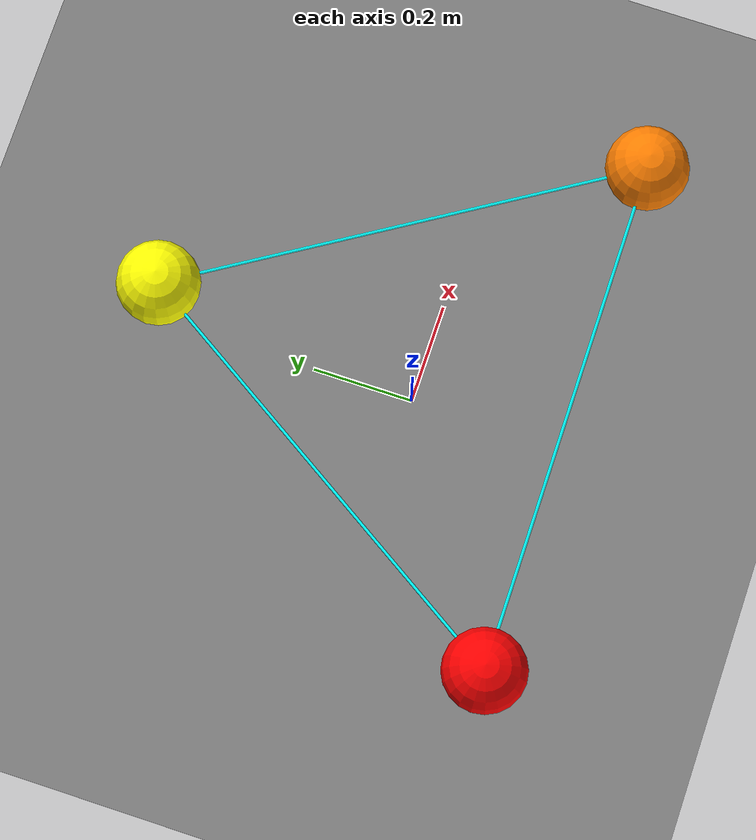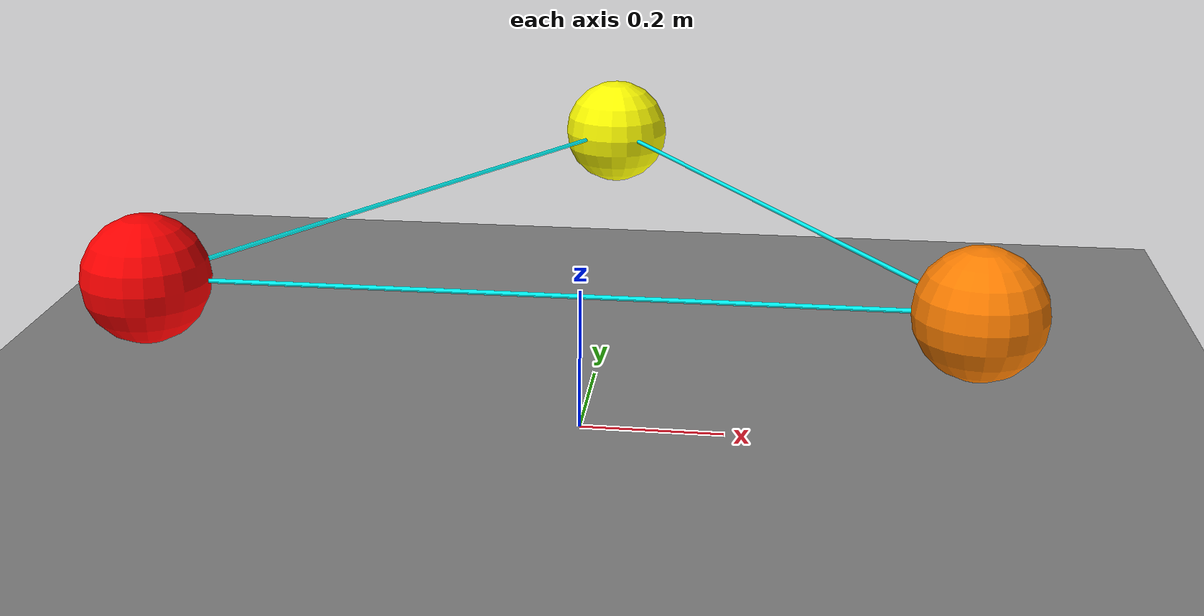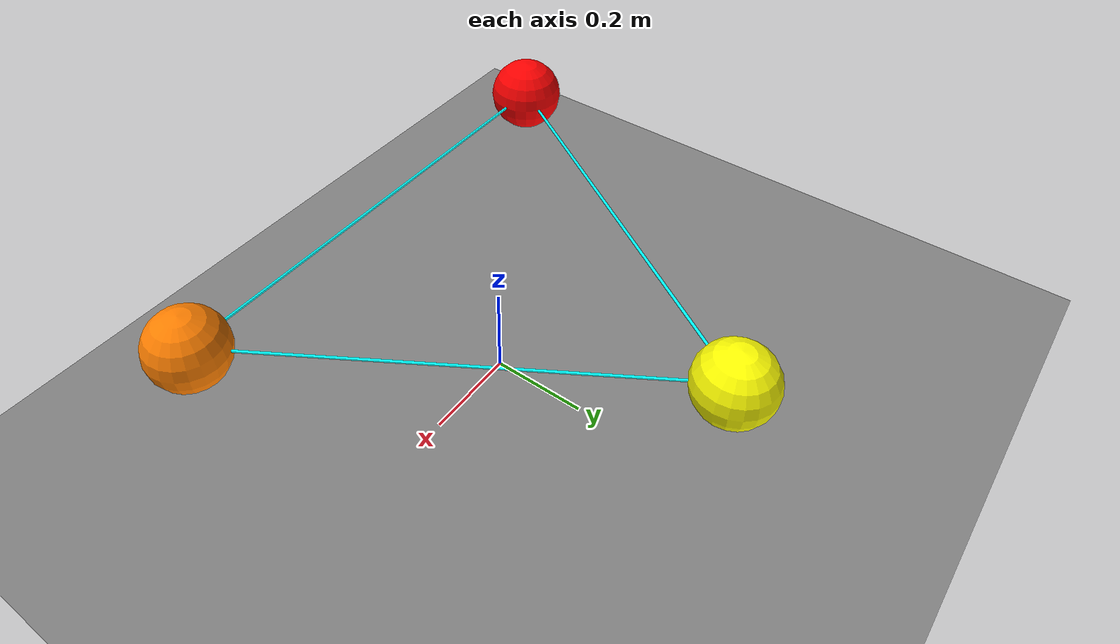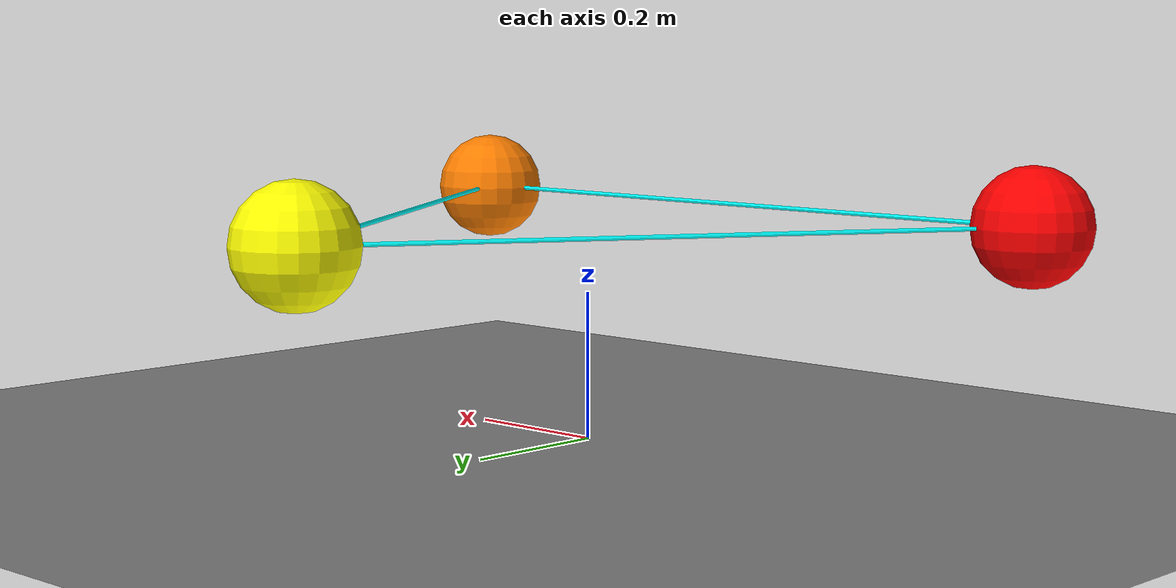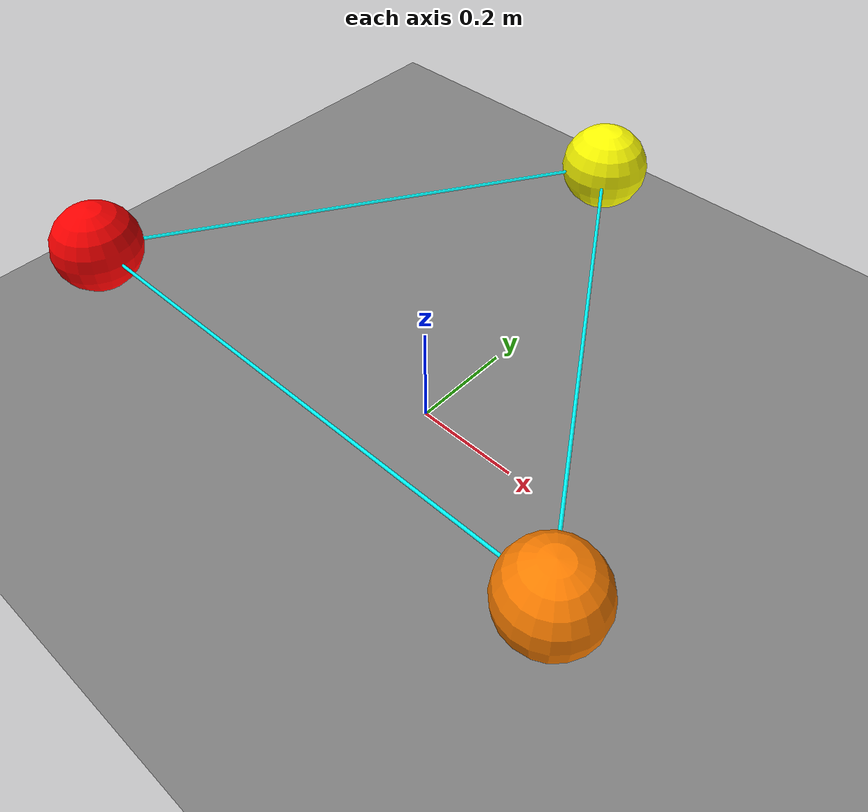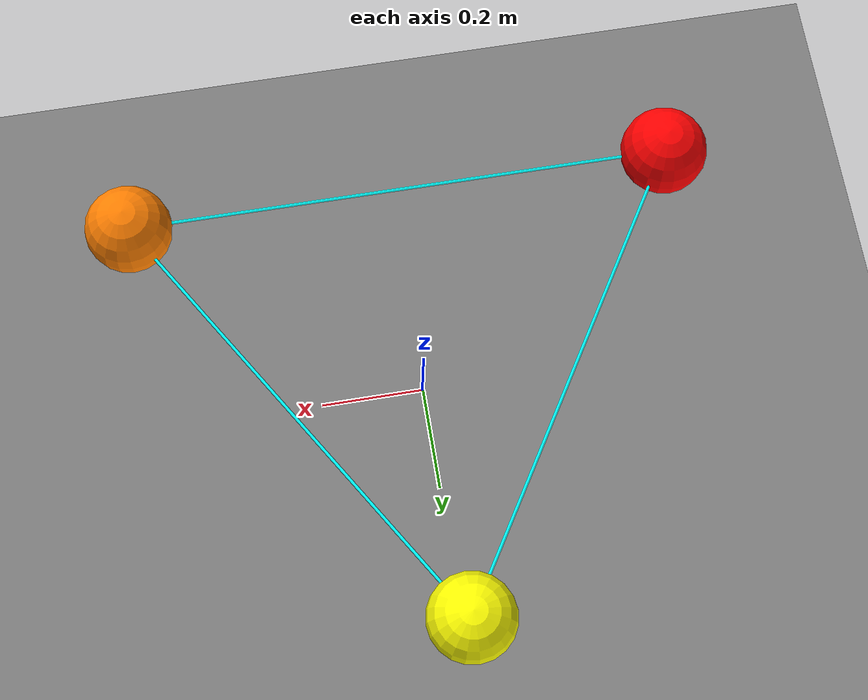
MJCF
<?xml version="1.0" ?>
<mujoco>
  <worldbody>
    <light pos="0 0 3"/>
    <geom name="floor" type="plane" size="3 3 0.1"/>
    <body name="node_a" pos="-0.5 -0.3 0.3">
      <freejoint/>
      <geom name="node_a_geom" type="sphere" size="0.08" rgba="1 0 0 1"/>
      <site name="node_a_site" pos="0 0 0" size="0.02"/>
    </body>
    <body name="node_b" pos="0.5 -0.3 0.3">
      <freejoint/>
      <geom name="node_b_geom" type="sphere" size="0.08" rgba="1 0.5 0 1"/>
      <site name="node_b_site" pos="0 0 0" size="0.02"/>
    </body>
    <body name="node_c" pos="0 0.5 0.3">
      <freejoint/>
      <geom name="node_c_geom" type="sphere" size="0.08" rgba="1 1 0 1"/>
      <site name="node_c_site" pos="0 0 0" size="0.02"/>
    </body>
  </worldbody>
  <option gravity="0 0 -9.81"/>
  <tendon>
    <spatial name="spring_1" rgba="0 1 1 1" stiffness="50" damping="5">
      <site site="node_a_site"/>
      <site site="node_b_site"/>
    </spatial>
    <spatial name="spring_2" rgba="0 1 1 1" stiffness="50" damping="5">
      <site site="node_a_site"/>
      <site site="node_c_site"/>
    </spatial>
    <spatial name="spring_3" rgba="0 1 1 1" stiffness="50" damping="5">
      <site site="node_b_site"/>
      <site site="node_c_site"/>
    </spatial>
  </tendon>
</mujoco>
